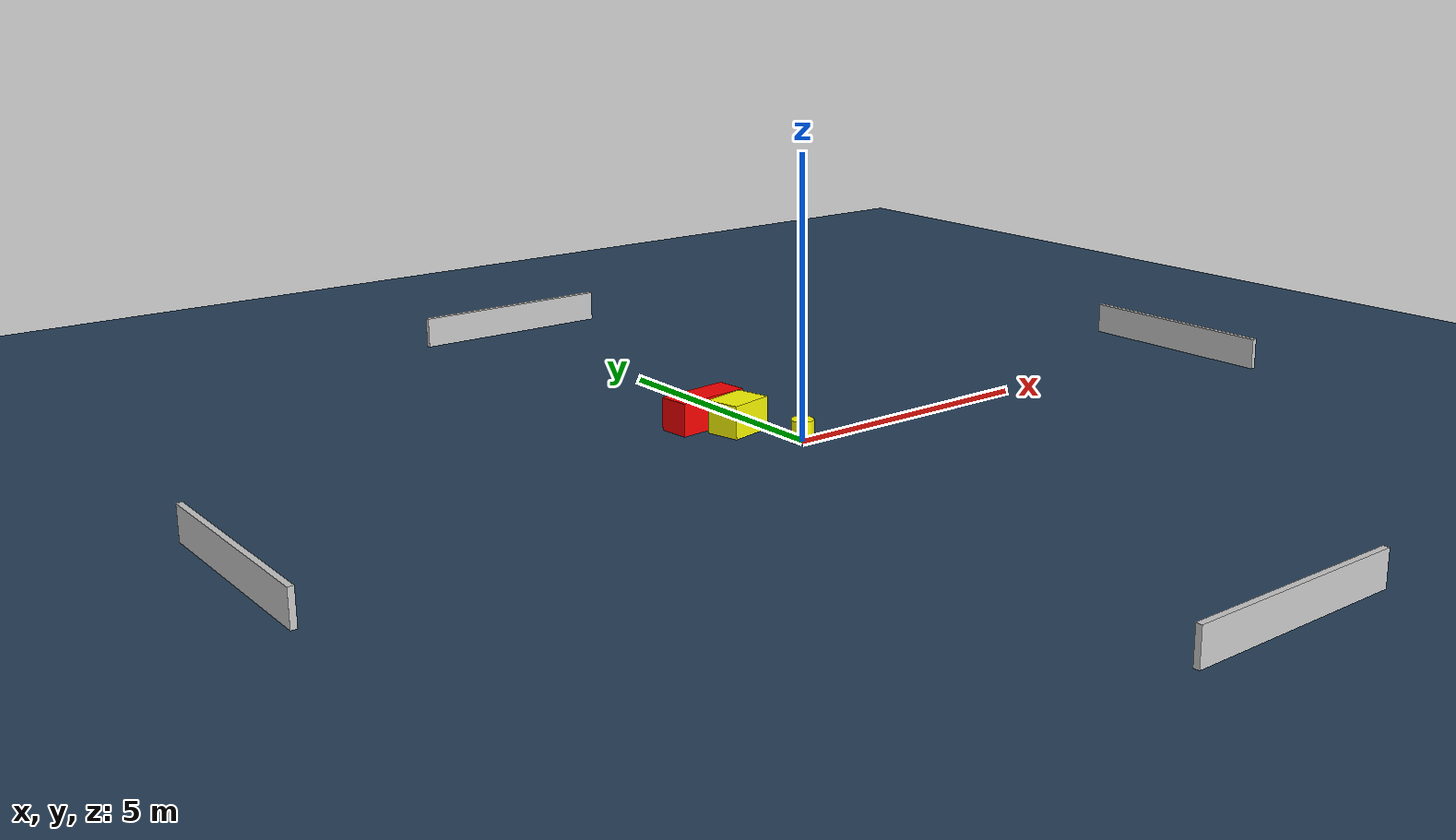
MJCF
<?xml version="1.0" ?>
<mujoco model="generated_environment">
  <option timestep="0.01" integrator="RK4" cone="elliptic"/>
  <default>
    <geom density="1"/>
  </default>
  <asset>
    <texture builtin="gradient" height="3072" name="skybox" rgb1="0.3 0.5 0.7" rgb2="0 0 0" type="skybox" width="512"/>
    <texture builtin="checker" height="300" name="groundplane" rgb1="0.2 0.3 0.4" rgb2="0.1 0.2 0.3" type="2d" width="300"/>
    <material name="groundplane" reflectance="0.2" texrepeat="5 5" texture="groundplane"/>
  </asset>
  <worldbody>
    <light dir="0 0 -1" directional="true" pos="0 0 1.5"/>
    <geom condim="3" friction="0.5 0.005 0.001" material="groundplane" name="floor" pos="0 0 0" size="0 0 0.05" type="plane"/>
    <body name="walls">
      <geom name="wall_1" condim="4" pos="-10.0 0.0 0.3" rgba="0.800000011920929 0.800000011920929 0.800000011920929 1.0" size="0.05 2.0 0.3" type="box"/>
      <geom name="wall_2" condim="4" pos="10.0 0.0 0.3" rgba="0.800000011920929 0.800000011920929 0.800000011920929 1.0" size="0.05 2.0 0.3" type="box"/>
      <geom name="wall_3" condim="4" pos="0.0 -10.0 0.3" rgba="0.800000011920929 0.800000011920929 0.800000011920929 1.0" size="2.0 0.05 0.3" type="box"/>
      <geom name="wall_4" condim="4" pos="0.0 10.0 0.3" rgba="0.800000011920929 0.800000011920929 0.800000011920929 1.0" size="2.0 0.05 0.3" type="box"/>
    </body>
    <body name="robot">
      <joint name="joint_x" type="slide" pos="0 0 0" axis="1 0 0"/>
      <joint name="joint_y" type="slide" pos="0 0 0" axis="0 1 0"/>
      <geom name="robot" type="cylinder" pos="0.0 0.0 0.2" size="0.2 0.2 0.0" mass="5.0" friction="1.0 0.005 0.0001" condim="4" rgba="1.0 1.0 0.0 1.0"/>
    </body>
    <body name="obstacle_1_movable">
      <geom name="obstacle_1_movable" condim="4" pos="-0.5069842519777497 1.1813560173294009 0.3" euler="0 0 12.791744947485121" friction="0.0 0.005 0.001" rgba="1.0 1.0 0.0 1.0" size="0.4198196346317474 0.32355889764056445 0.3" type="box" mass="0.1"/>
      <joint type="free"/>
    </body>
    <body name="obstacle_2_static">
      <geom name="obstacle_2_static" condim="4" pos="-0.786073814338417 1.8354168823786672 0.3" euler="0 0 186.10229889349492" friction="0.0 0.005 0.001" rgba="1.0 0.0 0.0 1.0" size="0.6962703929788104 0.29383950926244723 0.3" type="box"/>
    </body>
  </worldbody>
  <actuator>
    <motor name="actuator_x" joint="joint_x" gear="1" ctrlrange="-1 1"/>
    <motor name="actuator_y" joint="joint_y" gear="1" ctrlrange="-1 1"/>
  </actuator>
</mujoco>
